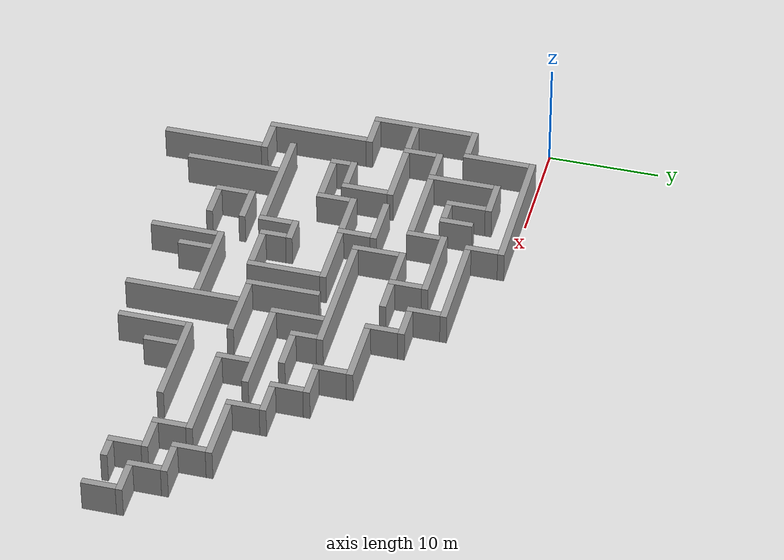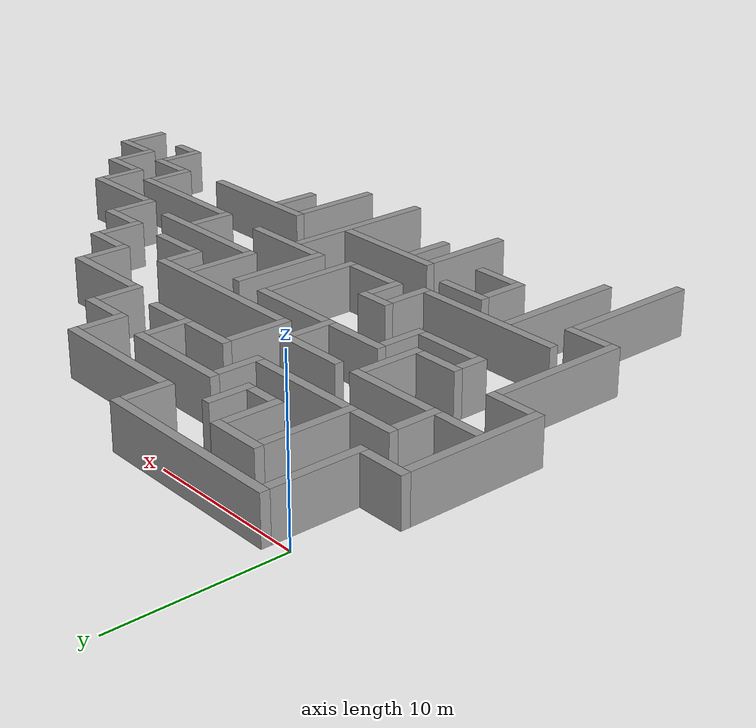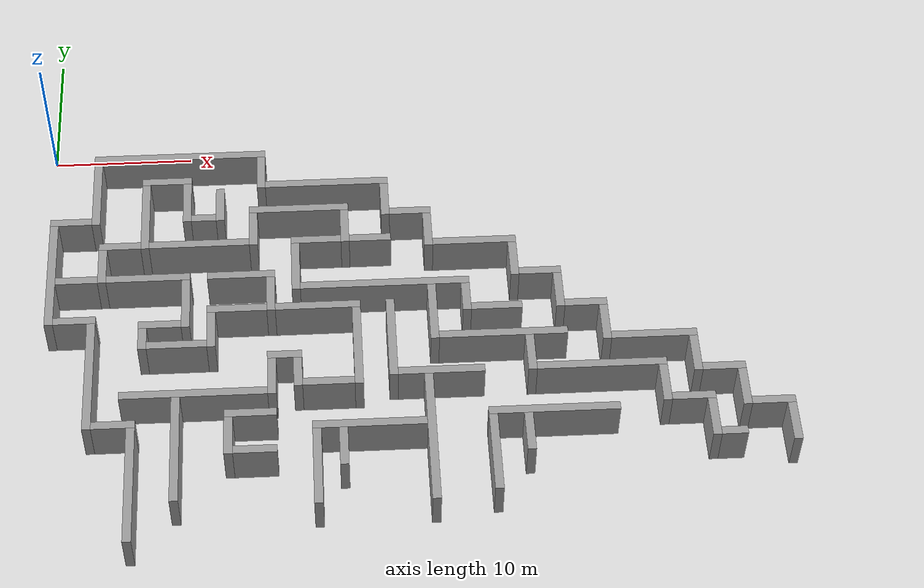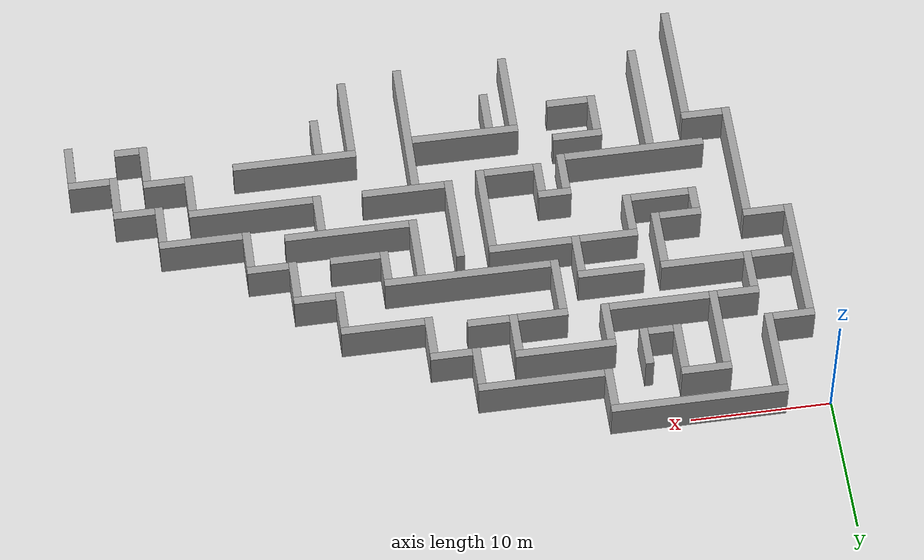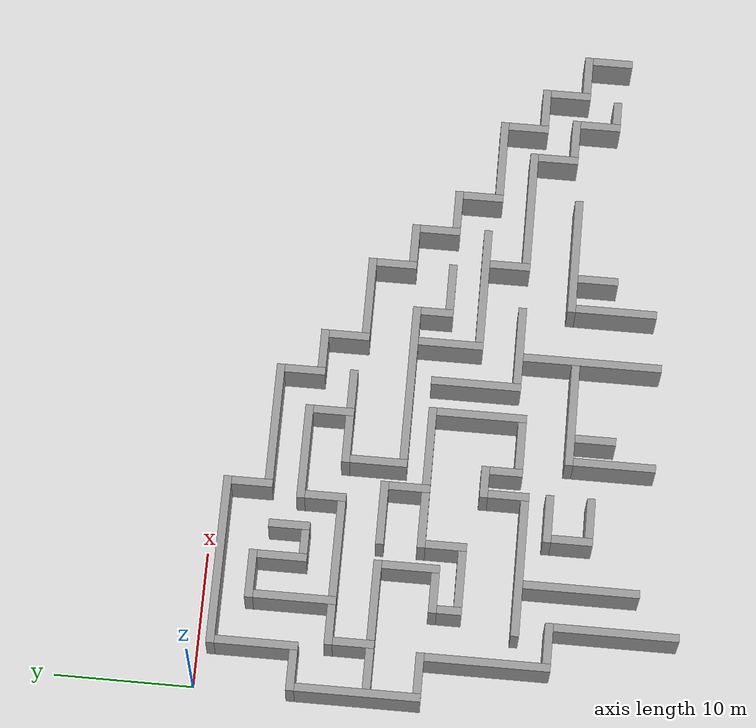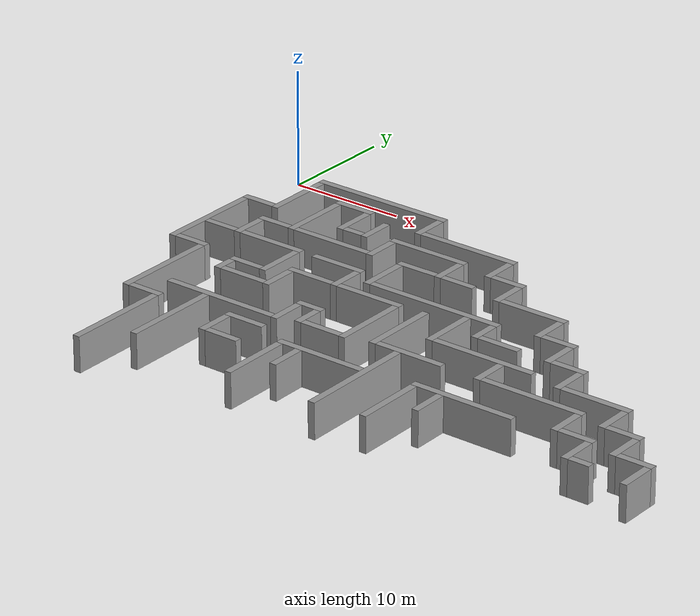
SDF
<sdf version="1.4">
 <model name="ButterflyWorld">
  <static>1</static>
  <link name="Wall_0">
   <collision name="Wall_0_Collision">
    <geometry><box><size>12.60000 0.60000 3.00000</size></box></geometry>
    <pose>9.30000 -0.90000 0 0 0 0.00000</pose>
   </collision>
   <visual name="Wall_0_Visual">
    <geometry><box><size>12.60000 0.60000 3.00000</size></box></geometry>
    <material>
     <script><uri>file://media/materials/scripts/gazebo.material</uri><name>Gazebo/Grey</name></script>
    </material>
    <pose>9.30000 -0.90000 0 0 0 0.00000</pose>
   </visual>
  </link>
  <link name="Wall_1">
   <collision name="Wall_1_Collision">
    <geometry><box><size>0.60000 6.00000 3.00000</size></box></geometry>
    <pose>3.30000 -4.20000 0 0 0 0.00000</pose>
   </collision>
   <visual name="Wall_1_Visual">
    <geometry><box><size>0.60000 6.00000 3.00000</size></box></geometry>
    <material>
     <script><uri>file://media/materials/scripts/gazebo.material</uri><name>Gazebo/Grey</name></script>
    </material>
    <pose>3.30000 -4.20000 0 0 0 0.00000</pose>
   </visual>
  </link>
  <link name="Wall_2">
   <collision name="Wall_2_Collision">
    <geometry><box><size>0.60000 3.00000 3.00000</size></box></geometry>
    <pose>15.30000 -2.70000 0 0 0 0.00000</pose>
   </collision>
   <visual name="Wall_2_Visual">
    <geometry><box><size>0.60000 3.00000 3.00000</size></box></geometry>
    <material>
     <script><uri>file://media/materials/scripts/gazebo.material</uri><name>Gazebo/Grey</name></script>
    </material>
    <pose>15.30000 -2.70000 0 0 0 0.00000</pose>
   </visual>
  </link>
  <link name="Wall_3">
   <collision name="Wall_3_Collision">
    <geometry><box><size>3.60000 0.60000 3.00000</size></box></geometry>
    <pose>8.40000 -3.30000 0 0 0 0.00000</pose>
   </collision>
   <visual name="Wall_3_Visual">
    <geometry><box><size>3.60000 0.60000 3.00000</size></box></geometry>
    <material>
     <script><uri>file://media/materials/scripts/gazebo.material</uri><name>Gazebo/Grey</name></script>
    </material>
    <pose>8.40000 -3.30000 0 0 0 0.00000</pose>
   </visual>
  </link>
  <link name="Wall_4">
   <collision name="Wall_4_Collision">
    <geometry><box><size>0.60000 6.00000 3.00000</size></box></geometry>
    <pose>6.90000 -6.60000 0 0 0 0.00000</pose>
   </collision>
   <visual name="Wall_4_Visual">
    <geometry><box><size>0.60000 6.00000 3.00000</size></box></geometry>
    <material>
     <script><uri>file://media/materials/scripts/gazebo.material</uri><name>Gazebo/Grey</name></script>
    </material>
    <pose>6.90000 -6.60000 0 0 0 0.00000</pose>
   </visual>
  </link>
  <link name="Wall_5">
   <collision name="Wall_5_Collision">
    <geometry><box><size>0.60000 3.60000 3.00000</size></box></geometry>
    <pose>9.90000 -5.40000 0 0 0 0.00000</pose>
   </collision>
   <visual name="Wall_5_Visual">
    <geometry><box><size>0.60000 3.60000 3.00000</size></box></geometry>
    <material>
     <script><uri>file://media/materials/scripts/gazebo.material</uri><name>Gazebo/Grey</name></script>
    </material>
    <pose>9.90000 -5.40000 0 0 0 0.00000</pose>
   </visual>
  </link>
  <link name="Wall_6">
   <collision name="Wall_6_Collision">
    <geometry><box><size>9.00000 0.60000 3.00000</size></box></geometry>
    <pose>20.10000 -3.90000 0 0 0 0.00000</pose>
   </collision>
   <visual name="Wall_6_Visual">
    <geometry><box><size>9.00000 0.60000 3.00000</size></box></geometry>
    <material>
     <script><uri>file://media/materials/scripts/gazebo.material</uri><name>Gazebo/Grey</name></script>
    </material>
    <pose>20.10000 -3.90000 0 0 0 0.00000</pose>
   </visual>
  </link>
  <link name="Wall_7">
   <collision name="Wall_7_Collision">
    <geometry><box><size>0.60000 3.00000 3.00000</size></box></geometry>
    <pose>12.30000 -5.70000 0 0 0 0.00000</pose>
   </collision>
   <visual name="Wall_7_Visual">
    <geometry><box><size>0.60000 3.00000 3.00000</size></box></geometry>
    <material>
     <script><uri>file://media/materials/scripts/gazebo.material</uri><name>Gazebo/Grey</name></script>
    </material>
    <pose>12.30000 -5.70000 0 0 0 0.00000</pose>
   </visual>
  </link>
  <link name="Wall_8">
   <collision name="Wall_8_Collision">
    <geometry><box><size>0.60000 3.00000 3.00000</size></box></geometry>
    <pose>24.30000 -5.70000 0 0 0 0.00000</pose>
   </collision>
   <visual name="Wall_8_Visual">
    <geometry><box><size>0.60000 3.00000 3.00000</size></box></geometry>
    <material>
     <script><uri>file://media/materials/scripts/gazebo.material</uri><name>Gazebo/Grey</name></script>
    </material>
    <pose>24.30000 -5.70000 0 0 0 0.00000</pose>
   </visual>
  </link>
  <link name="Wall_9">
   <collision name="Wall_9_Collision">
    <geometry><box><size>7.20000 0.60000 3.00000</size></box></geometry>
    <pose>18.00000 -6.30000 0 0 0 0.00000</pose>
   </collision>
   <visual name="Wall_9_Visual">
    <geometry><box><size>7.20000 0.60000 3.00000</size></box></geometry>
    <material>
     <script><uri>file://media/materials/scripts/gazebo.material</uri><name>Gazebo/Grey</name></script>
    </material>
    <pose>18.00000 -6.30000 0 0 0 0.00000</pose>
   </visual>
  </link>
  <link name="Wall_10">
   <collision name="Wall_10_Collision">
    <geometry><box><size>3.00000 0.60000 3.00000</size></box></geometry>
    <pose>1.50000 -6.90000 0 0 0 0.00000</pose>
   </collision>
   <visual name="Wall_10_Visual">
    <geometry><box><size>3.00000 0.60000 3.00000</size></box></geometry>
    <material>
     <script><uri>file://media/materials/scripts/gazebo.material</uri><name>Gazebo/Grey</name></script>
    </material>
    <pose>1.50000 -6.90000 0 0 0 0.00000</pose>
   </visual>
  </link>
  <link name="Wall_11">
   <collision name="Wall_11_Collision">
    <geometry><box><size>1.80000 0.60000 3.00000</size></box></geometry>
    <pose>11.10000 -6.90000 0 0 0 0.00000</pose>
   </collision>
   <visual name="Wall_11_Visual">
    <geometry><box><size>1.80000 0.60000 3.00000</size></box></geometry>
    <material>
     <script><uri>file://media/materials/scripts/gazebo.material</uri><name>Gazebo/Grey</name></script>
    </material>
    <pose>11.10000 -6.90000 0 0 0 0.00000</pose>
   </visual>
  </link>
  <link name="Wall_12">
   <collision name="Wall_12_Collision">
    <geometry><box><size>0.60000 3.00000 3.00000</size></box></geometry>
    <pose>14.70000 -8.10000 0 0 0 0.00000</pose>
   </collision>
   <visual name="Wall_12_Visual">
    <geometry><box><size>0.60000 3.00000 3.00000</size></box></geometry>
    <material>
     <script><uri>file://media/materials/scripts/gazebo.material</uri><name>Gazebo/Grey</name></script>
    </material>
    <pose>14.70000 -8.10000 0 0 0 0.00000</pose>
   </visual>
  </link>
  <link name="Wall_13">
   <collision name="Wall_13_Collision">
    <geometry><box><size>0.60000 3.00000 3.00000</size></box></geometry>
    <pose>21.30000 -8.10000 0 0 0 0.00000</pose>
   </collision>
   <visual name="Wall_13_Visual">
    <geometry><box><size>0.60000 3.00000 3.00000</size></box></geometry>
    <material>
     <script><uri>file://media/materials/scripts/gazebo.material</uri><name>Gazebo/Grey</name></script>
    </material>
    <pose>21.30000 -8.10000 0 0 0 0.00000</pose>
   </visual>
  </link>
  <link name="Wall_14">
   <collision name="Wall_14_Collision">
    <geometry><box><size>3.00000 0.60000 3.00000</size></box></geometry>
    <pose>26.10000 -6.90000 0 0 0 0.00000</pose>
   </collision>
   <visual name="Wall_14_Visual">
    <geometry><box><size>3.00000 0.60000 3.00000</size></box></geometry>
    <material>
     <script><uri>file://media/materials/scripts/gazebo.material</uri><name>Gazebo/Grey</name></script>
    </material>
    <pose>26.10000 -6.90000 0 0 0 0.00000</pose>
   </visual>
  </link>
  <link name="Wall_15">
   <collision name="Wall_15_Collision">
    <geometry><box><size>0.60000 9.00000 3.00000</size></box></geometry>
    <pose>0.30000 -11.70000 0 0 0 0.00000</pose>
   </collision>
   <visual name="Wall_15_Visual">
    <geometry><box><size>0.60000 9.00000 3.00000</size></box></geometry>
    <material>
     <script><uri>file://media/materials/scripts/gazebo.material</uri><name>Gazebo/Grey</name></script>
    </material>
    <pose>0.30000 -11.70000 0 0 0 0.00000</pose>
   </visual>
  </link>
  <link name="Wall_16">
   <collision name="Wall_16_Collision">
    <geometry><box><size>0.60000 3.00000 3.00000</size></box></geometry>
    <pose>27.30000 -8.70000 0 0 0 0.00000</pose>
   </collision>
   <visual name="Wall_16_Visual">
    <geometry><box><size>0.60000 3.00000 3.00000</size></box></geometry>
    <material>
     <script><uri>file://media/materials/scripts/gazebo.material</uri><name>Gazebo/Grey</name></script>
    </material>
    <pose>27.30000 -8.70000 0 0 0 0.00000</pose>
   </visual>
  </link>
  <link name="Wall_17">
   <collision name="Wall_17_Collision">
    <geometry><box><size>3.00000 0.60000 3.00000</size></box></geometry>
    <pose>5.10000 -9.30000 0 0 0 0.00000</pose>
   </collision>
   <visual name="Wall_17_Visual">
    <geometry><box><size>3.00000 0.60000 3.00000</size></box></geometry>
    <material>
     <script><uri>file://media/materials/scripts/gazebo.material</uri><name>Gazebo/Grey</name></script>
    </material>
    <pose>5.10000 -9.30000 0 0 0 0.00000</pose>
   </visual>
  </link>
  <link name="Wall_18">
   <collision name="Wall_18_Collision">
    <geometry><box><size>7.20000 0.60000 3.00000</size></box></geometry>
    <pose>10.80000 -9.30000 0 0 0 0.00000</pose>
   </collision>
   <visual name="Wall_18_Visual">
    <geometry><box><size>7.20000 0.60000 3.00000</size></box></geometry>
    <material>
     <script><uri>file://media/materials/scripts/gazebo.material</uri><name>Gazebo/Grey</name></script>
    </material>
    <pose>10.80000 -9.30000 0 0 0 0.00000</pose>
   </visual>
  </link>
  <link name="Wall_19">
   <collision name="Wall_19_Collision">
    <geometry><box><size>3.60000 0.60000 3.00000</size></box></geometry>
    <pose>19.20000 -9.30000 0 0 0 0.00000</pose>
   </collision>
   <visual name="Wall_19_Visual">
    <geometry><box><size>3.60000 0.60000 3.00000</size></box></geometry>
    <material>
     <script><uri>file://media/materials/scripts/gazebo.material</uri><name>Gazebo/Grey</name></script>
    </material>
    <pose>19.20000 -9.30000 0 0 0 0.00000</pose>
   </visual>
  </link>
  <link name="Wall_20">
   <collision name="Wall_20_Collision">
    <geometry><box><size>3.00000 0.60000 3.00000</size></box></geometry>
    <pose>23.10000 -9.30000 0 0 0 0.00000</pose>
   </collision>
   <visual name="Wall_20_Visual">
    <geometry><box><size>3.00000 0.60000 3.00000</size></box></geometry>
    <material>
     <script><uri>file://media/materials/scripts/gazebo.material</uri><name>Gazebo/Grey</name></script>
    </material>
    <pose>23.10000 -9.30000 0 0 0 0.00000</pose>
   </visual>
  </link>
  <link name="Wall_21">
   <collision name="Wall_21_Collision">
    <geometry><box><size>0.60000 3.00000 3.00000</size></box></geometry>
    <pose>3.90000 -11.10000 0 0 0 0.00000</pose>
   </collision>
   <visual name="Wall_21_Visual">
    <geometry><box><size>0.60000 3.00000 3.00000</size></box></geometry>
    <material>
     <script><uri>file://media/materials/scripts/gazebo.material</uri><name>Gazebo/Grey</name></script>
    </material>
    <pose>3.90000 -11.10000 0 0 0 0.00000</pose>
   </visual>
  </link>
  <link name="Wall_22">
   <collision name="Wall_22_Collision">
    <geometry><box><size>0.60000 4.20000 3.00000</size></box></geometry>
    <pose>17.70000 -11.70000 0 0 0 0.00000</pose>
   </collision>
   <visual name="Wall_22_Visual">
    <geometry><box><size>0.60000 4.20000 3.00000</size></box></geometry>
    <material>
     <script><uri>file://media/materials/scripts/gazebo.material</uri><name>Gazebo/Grey</name></script>
    </material>
    <pose>17.70000 -11.70000 0 0 0 0.00000</pose>
   </visual>
  </link>
  <link name="Wall_23">
   <collision name="Wall_23_Collision">
    <geometry><box><size>6.00000 0.60000 3.00000</size></box></geometry>
    <pose>30.60000 -9.90000 0 0 0 0.00000</pose>
   </collision>
   <visual name="Wall_23_Visual">
    <geometry><box><size>6.00000 0.60000 3.00000</size></box></geometry>
    <material>
     <script><uri>file://media/materials/scripts/gazebo.material</uri><name>Gazebo/Grey</name></script>
    </material>
    <pose>30.60000 -9.90000 0 0 0 0.00000</pose>
   </visual>
  </link>
  <link name="Wall_24">
   <collision name="Wall_24_Collision">
    <geometry><box><size>0.60000 3.00000 3.00000</size></box></geometry>
    <pose>33.30000 -11.70000 0 0 0 0.00000</pose>
   </collision>
   <visual name="Wall_24_Visual">
    <geometry><box><size>0.60000 3.00000 3.00000</size></box></geometry>
    <material>
     <script><uri>file://media/materials/scripts/gazebo.material</uri><name>Gazebo/Grey</name></script>
    </material>
    <pose>33.30000 -11.70000 0 0 0 0.00000</pose>
   </visual>
  </link>
  <link name="Wall_25">
   <collision name="Wall_25_Collision">
    <geometry><box><size>3.00000 0.60000 3.00000</size></box></geometry>
    <pose>2.10000 -12.30000 0 0 0 0.00000</pose>
   </collision>
   <visual name="Wall_25_Visual">
    <geometry><box><size>3.00000 0.60000 3.00000</size></box></geometry>
    <material>
     <script><uri>file://media/materials/scripts/gazebo.material</uri><name>Gazebo/Grey</name></script>
    </material>
    <pose>2.10000 -12.30000 0 0 0 0.00000</pose>
   </visual>
  </link>
  <link name="Wall_26">
   <collision name="Wall_26_Collision">
    <geometry><box><size>6.00000 0.60000 3.00000</size></box></geometry>
    <pose>7.20000 -12.30000 0 0 0 0.00000</pose>
   </collision>
   <visual name="Wall_26_Visual">
    <geometry><box><size>6.00000 0.60000 3.00000</size></box></geometry>
    <material>
     <script><uri>file://media/materials/scripts/gazebo.material</uri><name>Gazebo/Grey</name></script>
    </material>
    <pose>7.20000 -12.30000 0 0 0 0.00000</pose>
   </visual>
  </link>
  <link name="Wall_27">
   <collision name="Wall_27_Collision">
    <geometry><box><size>4.80000 0.60000 3.00000</size></box></geometry>
    <pose>13.80000 -12.30000 0 0 0 0.00000</pose>
   </collision>
   <visual name="Wall_27_Visual">
    <geometry><box><size>4.80000 0.60000 3.00000</size></box></geometry>
    <material>
     <script><uri>file://media/materials/scripts/gazebo.material</uri><name>Gazebo/Grey</name></script>
    </material>
    <pose>13.80000 -12.30000 0 0 0 0.00000</pose>
   </visual>
  </link>
  <link name="Wall_28">
   <collision name="Wall_28_Collision">
    <geometry><box><size>0.60000 4.20000 3.00000</size></box></geometry>
    <pose>9.90000 -14.70000 0 0 0 0.00000</pose>
   </collision>
   <visual name="Wall_28_Visual">
    <geometry><box><size>0.60000 4.20000 3.00000</size></box></geometry>
    <material>
     <script><uri>file://media/materials/scripts/gazebo.material</uri><name>Gazebo/Grey</name></script>
    </material>
    <pose>9.90000 -14.70000 0 0 0 0.00000</pose>
   </visual>
  </link>
  <link name="Wall_29">
   <collision name="Wall_29_Collision">
    <geometry><box><size>0.60000 3.00000 3.00000</size></box></geometry>
    <pose>15.90000 -14.10000 0 0 0 0.00000</pose>
   </collision>
   <visual name="Wall_29_Visual">
    <geometry><box><size>0.60000 3.00000 3.00000</size></box></geometry>
    <material>
     <script><uri>file://media/materials/scripts/gazebo.material</uri><name>Gazebo/Grey</name></script>
    </material>
    <pose>15.90000 -14.10000 0 0 0 0.00000</pose>
   </visual>
  </link>
  <link name="Wall_30">
   <collision name="Wall_30_Collision">
    <geometry><box><size>3.00000 0.60000 3.00000</size></box></geometry>
    <pose>35.10000 -12.90000 0 0 0 0.00000</pose>
   </collision>
   <visual name="Wall_30_Visual">
    <geometry><box><size>3.00000 0.60000 3.00000</size></box></geometry>
    <material>
     <script><uri>file://media/materials/scripts/gazebo.material</uri><name>Gazebo/Grey</name></script>
    </material>
    <pose>35.10000 -12.90000 0 0 0 0.00000</pose>
   </visual>
  </link>
  <link name="Wall_31">
   <collision name="Wall_31_Collision">
    <geometry><box><size>12.00000 0.60000 3.00000</size></box></geometry>
    <pose>24.00000 -13.50000 0 0 0 0.00000</pose>
   </collision>
   <visual name="Wall_31_Visual">
    <geometry><box><size>12.00000 0.60000 3.00000</size></box></geometry>
    <material>
     <script><uri>file://media/materials/scripts/gazebo.material</uri><name>Gazebo/Grey</name></script>
    </material>
    <pose>24.00000 -13.50000 0 0 0 0.00000</pose>
   </visual>
  </link>
  <link name="Wall_32">
   <collision name="Wall_32_Collision">
    <geometry><box><size>0.60000 3.00000 3.00000</size></box></geometry>
    <pose>36.30000 -14.70000 0 0 0 0.00000</pose>
   </collision>
   <visual name="Wall_32_Visual">
    <geometry><box><size>0.60000 3.00000 3.00000</size></box></geometry>
    <material>
     <script><uri>file://media/materials/scripts/gazebo.material</uri><name>Gazebo/Grey</name></script>
    </material>
    <pose>36.30000 -14.70000 0 0 0 0.00000</pose>
   </visual>
  </link>
  <link name="Wall_33">
   <collision name="Wall_33_Collision">
    <geometry><box><size>0.60000 4.80000 3.00000</size></box></geometry>
    <pose>27.30000 -16.20000 0 0 0 0.00000</pose>
   </collision>
   <visual name="Wall_33_Visual">
    <geometry><box><size>0.60000 4.80000 3.00000</size></box></geometry>
    <material>
     <script><uri>file://media/materials/scripts/gazebo.material</uri><name>Gazebo/Grey</name></script>
    </material>
    <pose>27.30000 -16.20000 0 0 0 0.00000</pose>
   </visual>
  </link>
  <link name="Wall_34">
   <collision name="Wall_34_Collision">
    <geometry><box><size>0.60000 2.40000 3.00000</size></box></geometry>
    <pose>29.70000 -15.00000 0 0 0 0.00000</pose>
   </collision>
   <visual name="Wall_34_Visual">
    <geometry><box><size>0.60000 2.40000 3.00000</size></box></geometry>
    <material>
     <script><uri>file://media/materials/scripts/gazebo.material</uri><name>Gazebo/Grey</name></script>
    </material>
    <pose>29.70000 -15.00000 0 0 0 0.00000</pose>
   </visual>
  </link>
  <link name="Wall_35">
   <collision name="Wall_35_Collision">
    <geometry><box><size>4.20000 0.60000 3.00000</size></box></geometry>
    <pose>13.50000 -15.30000 0 0 0 0.00000</pose>
   </collision>
   <visual name="Wall_35_Visual">
    <geometry><box><size>4.20000 0.60000 3.00000</size></box></geometry>
    <material>
     <script><uri>file://media/materials/scripts/gazebo.material</uri><name>Gazebo/Grey</name></script>
    </material>
    <pose>13.50000 -15.30000 0 0 0 0.00000</pose>
   </visual>
  </link>
  <link name="Wall_36">
   <collision name="Wall_36_Collision">
    <geometry><box><size>6.00000 0.60000 3.00000</size></box></geometry>
    <pose>19.20000 -15.30000 0 0 0 0.00000</pose>
   </collision>
   <visual name="Wall_36_Visual">
    <geometry><box><size>6.00000 0.60000 3.00000</size></box></geometry>
    <material>
     <script><uri>file://media/materials/scripts/gazebo.material</uri><name>Gazebo/Grey</name></script>
    </material>
    <pose>19.20000 -15.30000 0 0 0 0.00000</pose>
   </visual>
  </link>
  <link name="Wall_37">
   <collision name="Wall_37_Collision">
    <geometry><box><size>0.60000 6.60000 3.00000</size></box></geometry>
    <pose>24.30000 -18.30000 0 0 0 0.00000</pose>
   </collision>
   <visual name="Wall_37_Visual">
    <geometry><box><size>0.60000 6.60000 3.00000</size></box></geometry>
    <material>
     <script><uri>file://media/materials/scripts/gazebo.material</uri><name>Gazebo/Grey</name></script>
    </material>
    <pose>24.30000 -18.30000 0 0 0 0.00000</pose>
   </visual>
  </link>
  <link name="Wall_38">
   <collision name="Wall_38_Collision">
    <geometry><box><size>3.00000 0.60000 3.00000</size></box></geometry>
    <pose>2.10000 -15.90000 0 0 0 0.00000</pose>
   </collision>
   <visual name="Wall_38_Visual">
    <geometry><box><size>3.00000 0.60000 3.00000</size></box></geometry>
    <material>
     <script><uri>file://media/materials/scripts/gazebo.material</uri><name>Gazebo/Grey</name></script>
    </material>
    <pose>2.10000 -15.90000 0 0 0 0.00000</pose>
   </visual>
  </link>
  <link name="Wall_39">
   <collision name="Wall_39_Collision">
    <geometry><box><size>0.60000 3.00000 3.00000</size></box></geometry>
    <pose>11.70000 -17.10000 0 0 0 0.00000</pose>
   </collision>
   <visual name="Wall_39_Visual">
    <geometry><box><size>0.60000 3.00000 3.00000</size></box></geometry>
    <material>
     <script><uri>file://media/materials/scripts/gazebo.material</uri><name>Gazebo/Grey</name></script>
    </material>
    <pose>11.70000 -17.10000 0 0 0 0.00000</pose>
   </visual>
  </link>
  <link name="Wall_40">
   <collision name="Wall_40_Collision">
    <geometry><box><size>0.60000 6.60000 3.00000</size></box></geometry>
    <pose>21.90000 -18.90000 0 0 0 0.00000</pose>
   </collision>
   <visual name="Wall_40_Visual">
    <geometry><box><size>0.60000 6.60000 3.00000</size></box></geometry>
    <material>
     <script><uri>file://media/materials/scripts/gazebo.material</uri><name>Gazebo/Grey</name></script>
    </material>
    <pose>21.90000 -18.90000 0 0 0 0.00000</pose>
   </visual>
  </link>
  <link name="Wall_41">
   <collision name="Wall_41_Collision">
    <geometry><box><size>3.60000 0.60000 3.00000</size></box></geometry>
    <pose>31.80000 -15.90000 0 0 0 0.00000</pose>
   </collision>
   <visual name="Wall_41_Visual">
    <geometry><box><size>3.60000 0.60000 3.00000</size></box></geometry>
    <material>
     <script><uri>file://media/materials/scripts/gazebo.material</uri><name>Gazebo/Grey</name></script>
    </material>
    <pose>31.80000 -15.90000 0 0 0 0.00000</pose>
   </visual>
  </link>
  <link name="Wall_42">
   <collision name="Wall_42_Collision">
    <geometry><box><size>3.00000 0.60000 3.00000</size></box></geometry>
    <pose>38.10000 -15.90000 0 0 0 0.00000</pose>
   </collision>
   <visual name="Wall_42_Visual">
    <geometry><box><size>3.00000 0.60000 3.00000</size></box></geometry>
    <material>
     <script><uri>file://media/materials/scripts/gazebo.material</uri><name>Gazebo/Grey</name></script>
    </material>
    <pose>38.10000 -15.90000 0 0 0 0.00000</pose>
   </visual>
  </link>
  <link name="Wall_43">
   <collision name="Wall_43_Collision">
    <geometry><box><size>0.60000 9.00000 3.00000</size></box></geometry>
    <pose>3.30000 -20.70000 0 0 0 0.00000</pose>
   </collision>
   <visual name="Wall_43_Visual">
    <geometry><box><size>0.60000 9.00000 3.00000</size></box></geometry>
    <material>
     <script><uri>file://media/materials/scripts/gazebo.material</uri><name>Gazebo/Grey</name></script>
    </material>
    <pose>3.30000 -20.70000 0 0 0 0.00000</pose>
   </visual>
  </link>
  <link name="Wall_44">
   <collision name="Wall_44_Collision">
    <geometry><box><size>3.00000 0.60000 3.00000</size></box></geometry>
    <pose>8.10000 -16.50000 0 0 0 0.00000</pose>
   </collision>
   <visual name="Wall_44_Visual">
    <geometry><box><size>3.00000 0.60000 3.00000</size></box></geometry>
    <material>
     <script><uri>file://media/materials/scripts/gazebo.material</uri><name>Gazebo/Grey</name></script>
    </material>
    <pose>8.10000 -16.50000 0 0 0 0.00000</pose>
   </visual>
  </link>
  <link name="Wall_45">
   <collision name="Wall_45_Collision">
    <geometry><box><size>0.60000 3.00000 3.00000</size></box></geometry>
    <pose>39.30000 -17.70000 0 0 0 0.00000</pose>
   </collision>
   <visual name="Wall_45_Visual">
    <geometry><box><size>0.60000 3.00000 3.00000</size></box></geometry>
    <material>
     <script><uri>file://media/materials/scripts/gazebo.material</uri><name>Gazebo/Grey</name></script>
    </material>
    <pose>39.30000 -17.70000 0 0 0 0.00000</pose>
   </visual>
  </link>
  <link name="Wall_46">
   <collision name="Wall_46_Collision">
    <geometry><box><size>0.60000 1.80000 3.00000</size></box></geometry>
    <pose>6.90000 -17.70000 0 0 0 0.00000</pose>
   </collision>
   <visual name="Wall_46_Visual">
    <geometry><box><size>0.60000 1.80000 3.00000</size></box></geometry>
    <material>
     <script><uri>file://media/materials/scripts/gazebo.material</uri><name>Gazebo/Grey</name></script>
    </material>
    <pose>6.90000 -17.70000 0 0 0 0.00000</pose>
   </visual>
  </link>
  <link name="Wall_47">
   <collision name="Wall_47_Collision">
    <geometry><box><size>4.20000 0.60000 3.00000</size></box></geometry>
    <pose>9.30000 -18.30000 0 0 0 0.00000</pose>
   </collision>
   <visual name="Wall_47_Visual">
    <geometry><box><size>4.20000 0.60000 3.00000</size></box></geometry>
    <material>
     <script><uri>file://media/materials/scripts/gazebo.material</uri><name>Gazebo/Grey</name></script>
    </material>
    <pose>9.30000 -18.30000 0 0 0 0.00000</pose>
   </visual>
  </link>
  <link name="Wall_48">
   <collision name="Wall_48_Collision">
    <geometry><box><size>9.00000 0.60000 3.00000</size></box></geometry>
    <pose>32.10000 -18.30000 0 0 0 0.00000</pose>
   </collision>
   <visual name="Wall_48_Visual">
    <geometry><box><size>9.00000 0.60000 3.00000</size></box></geometry>
    <material>
     <script><uri>file://media/materials/scripts/gazebo.material</uri><name>Gazebo/Grey</name></script>
    </material>
    <pose>32.10000 -18.30000 0 0 0 0.00000</pose>
   </visual>
  </link>
  <link name="Wall_49">
   <collision name="Wall_49_Collision">
    <geometry><box><size>0.60000 3.00000 3.00000</size></box></geometry>
    <pose>33.90000 -20.10000 0 0 0 0.00000</pose>
   </collision>
   <visual name="Wall_49_Visual">
    <geometry><box><size>0.60000 3.00000 3.00000</size></box></geometry>
    <material>
     <script><uri>file://media/materials/scripts/gazebo.material</uri><name>Gazebo/Grey</name></script>
    </material>
    <pose>33.90000 -20.10000 0 0 0 0.00000</pose>
   </visual>
  </link>
  <link name="Wall_50">
   <collision name="Wall_50_Collision">
    <geometry><box><size>6.00000 0.60000 3.00000</size></box></geometry>
    <pose>42.60000 -18.90000 0 0 0 0.00000</pose>
   </collision>
   <visual name="Wall_50_Visual">
    <geometry><box><size>6.00000 0.60000 3.00000</size></box></geometry>
    <material>
     <script><uri>file://media/materials/scripts/gazebo.material</uri><name>Gazebo/Grey</name></script>
    </material>
    <pose>42.60000 -18.90000 0 0 0 0.00000</pose>
   </visual>
  </link>
  <link name="Wall_51">
   <collision name="Wall_51_Collision">
    <geometry><box><size>2.40000 0.60000 3.00000</size></box></geometry>
    <pose>16.80000 -19.50000 0 0 0 0.00000</pose>
   </collision>
   <visual name="Wall_51_Visual">
    <geometry><box><size>2.40000 0.60000 3.00000</size></box></geometry>
    <material>
     <script><uri>file://media/materials/scripts/gazebo.material</uri><name>Gazebo/Grey</name></script>
    </material>
    <pose>16.80000 -19.50000 0 0 0 0.00000</pose>
   </visual>
  </link>
  <link name="Wall_52">
   <collision name="Wall_52_Collision">
    <geometry><box><size>0.60000 3.00000 3.00000</size></box></geometry>
    <pose>45.30000 -20.70000 0 0 0 0.00000</pose>
   </collision>
   <visual name="Wall_52_Visual">
    <geometry><box><size>0.60000 3.00000 3.00000</size></box></geometry>
    <material>
     <script><uri>file://media/materials/scripts/gazebo.material</uri><name>Gazebo/Grey</name></script>
    </material>
    <pose>45.30000 -20.70000 0 0 0 0.00000</pose>
   </visual>
  </link>
  <link name="Wall_53">
   <collision name="Wall_53_Collision">
    <geometry><box><size>0.60000 3.00000 3.00000</size></box></geometry>
    <pose>15.90000 -21.30000 0 0 0 0.00000</pose>
   </collision>
   <visual name="Wall_53_Visual">
    <geometry><box><size>0.60000 3.00000 3.00000</size></box></geometry>
    <material>
     <script><uri>file://media/materials/scripts/gazebo.material</uri><name>Gazebo/Grey</name></script>
    </material>
    <pose>15.90000 -21.30000 0 0 0 0.00000</pose>
   </visual>
  </link>
  <link name="Wall_54">
   <collision name="Wall_54_Collision">
    <geometry><box><size>0.60000 2.40000 3.00000</size></box></geometry>
    <pose>17.70000 -21.00000 0 0 0 0.00000</pose>
   </collision>
   <visual name="Wall_54_Visual">
    <geometry><box><size>0.60000 2.40000 3.00000</size></box></geometry>
    <material>
     <script><uri>file://media/materials/scripts/gazebo.material</uri><name>Gazebo/Grey</name></script>
    </material>
    <pose>17.70000 -21.00000 0 0 0 0.00000</pose>
   </visual>
  </link>
  <link name="Wall_55">
   <collision name="Wall_55_Collision">
    <geometry><box><size>6.00000 0.60000 3.00000</size></box></geometry>
    <pose>27.60000 -21.30000 0 0 0 0.00000</pose>
   </collision>
   <visual name="Wall_55_Visual">
    <geometry><box><size>6.00000 0.60000 3.00000</size></box></geometry>
    <material>
     <script><uri>file://media/materials/scripts/gazebo.material</uri><name>Gazebo/Grey</name></script>
    </material>
    <pose>27.60000 -21.30000 0 0 0 0.00000</pose>
   </visual>
  </link>
  <link name="Wall_56">
   <collision name="Wall_56_Collision">
    <geometry><box><size>9.00000 0.60000 3.00000</size></box></geometry>
    <pose>38.70000 -21.30000 0 0 0 0.00000</pose>
   </collision>
   <visual name="Wall_56_Visual">
    <geometry><box><size>9.00000 0.60000 3.00000</size></box></geometry>
    <material>
     <script><uri>file://media/materials/scripts/gazebo.material</uri><name>Gazebo/Grey</name></script>
    </material>
    <pose>38.70000 -21.30000 0 0 0 0.00000</pose>
   </visual>
  </link>
  <link name="Wall_57">
   <collision name="Wall_57_Collision">
    <geometry><box><size>3.60000 0.60000 3.00000</size></box></geometry>
    <pose>19.80000 -21.90000 0 0 0 0.00000</pose>
   </collision>
   <visual name="Wall_57_Visual">
    <geometry><box><size>3.60000 0.60000 3.00000</size></box></geometry>
    <material>
     <script><uri>file://media/materials/scripts/gazebo.material</uri><name>Gazebo/Grey</name></script>
    </material>
    <pose>19.80000 -21.90000 0 0 0 0.00000</pose>
   </visual>
  </link>
  <link name="Wall_58">
   <collision name="Wall_58_Collision">
    <geometry><box><size>0.60000 10.20000 3.00000</size></box></geometry>
    <pose>26.70000 -26.70000 0 0 0 0.00000</pose>
   </collision>
   <visual name="Wall_58_Visual">
    <geometry><box><size>0.60000 10.20000 3.00000</size></box></geometry>
    <material>
     <script><uri>file://media/materials/scripts/gazebo.material</uri><name>Gazebo/Grey</name></script>
    </material>
    <pose>26.70000 -26.70000 0 0 0 0.00000</pose>
   </visual>
  </link>
  <link name="Wall_59">
   <collision name="Wall_59_Collision">
    <geometry><box><size>0.60000 3.00000 3.00000</size></box></geometry>
    <pose>42.90000 -23.10000 0 0 0 0.00000</pose>
   </collision>
   <visual name="Wall_59_Visual">
    <geometry><box><size>0.60000 3.00000 3.00000</size></box></geometry>
    <material>
     <script><uri>file://media/materials/scripts/gazebo.material</uri><name>Gazebo/Grey</name></script>
    </material>
    <pose>42.90000 -23.10000 0 0 0 0.00000</pose>
   </visual>
  </link>
  <link name="Wall_60">
   <collision name="Wall_60_Collision">
    <geometry><box><size>3.00000 0.60000 3.00000</size></box></geometry>
    <pose>47.10000 -21.90000 0 0 0 0.00000</pose>
   </collision>
   <visual name="Wall_60_Visual">
    <geometry><box><size>3.00000 0.60000 3.00000</size></box></geometry>
    <material>
     <script><uri>file://media/materials/scripts/gazebo.material</uri><name>Gazebo/Grey</name></script>
    </material>
    <pose>47.10000 -21.90000 0 0 0 0.00000</pose>
   </visual>
  </link>
  <link name="Wall_61">
   <collision name="Wall_61_Collision">
    <geometry><box><size>10.20000 0.60000 3.00000</size></box></geometry>
    <pose>10.50000 -22.50000 0 0 0 0.00000</pose>
   </collision>
   <visual name="Wall_61_Visual">
    <geometry><box><size>10.20000 0.60000 3.00000</size></box></geometry>
    <material>
     <script><uri>file://media/materials/scripts/gazebo.material</uri><name>Gazebo/Grey</name></script>
    </material>
    <pose>10.50000 -22.50000 0 0 0 0.00000</pose>
   </visual>
  </link>
  <link name="Wall_62">
   <collision name="Wall_62_Collision">
    <geometry><box><size>0.60000 3.00000 3.00000</size></box></geometry>
    <pose>48.30000 -23.70000 0 0 0 0.00000</pose>
   </collision>
   <visual name="Wall_62_Visual">
    <geometry><box><size>0.60000 3.00000 3.00000</size></box></geometry>
    <material>
     <script><uri>file://media/materials/scripts/gazebo.material</uri><name>Gazebo/Grey</name></script>
    </material>
    <pose>48.30000 -23.70000 0 0 0 0.00000</pose>
   </visual>
  </link>
  <link name="Wall_63">
   <collision name="Wall_63_Collision">
    <geometry><box><size>0.60000 8.40000 3.00000</size></box></geometry>
    <pose>9.30000 -27.00000 0 0 0 0.00000</pose>
   </collision>
   <visual name="Wall_63_Visual">
    <geometry><box><size>0.60000 8.40000 3.00000</size></box></geometry>
    <material>
     <script><uri>file://media/materials/scripts/gazebo.material</uri><name>Gazebo/Grey</name></script>
    </material>
    <pose>9.30000 -27.00000 0 0 0 0.00000</pose>
   </visual>
  </link>
  <link name="Wall_64">
   <collision name="Wall_64_Collision">
    <geometry><box><size>3.60000 0.60000 3.00000</size></box></geometry>
    <pose>14.40000 -24.30000 0 0 0 0.00000</pose>
   </collision>
   <visual name="Wall_64_Visual">
    <geometry><box><size>3.60000 0.60000 3.00000</size></box></geometry>
    <material>
     <script><uri>file://media/materials/scripts/gazebo.material</uri><name>Gazebo/Grey</name></script>
    </material>
    <pose>14.40000 -24.30000 0 0 0 0.00000</pose>
   </visual>
  </link>
  <link name="Wall_65">
   <collision name="Wall_65_Collision">
    <geometry><box><size>3.00000 0.60000 3.00000</size></box></geometry>
    <pose>44.70000 -24.30000 0 0 0 0.00000</pose>
   </collision>
   <visual name="Wall_65_Visual">
    <geometry><box><size>3.00000 0.60000 3.00000</size></box></geometry>
    <material>
     <script><uri>file://media/materials/scripts/gazebo.material</uri><name>Gazebo/Grey</name></script>
    </material>
    <pose>44.70000 -24.30000 0 0 0 0.00000</pose>
   </visual>
  </link>
  <link name="Wall_66">
   <collision name="Wall_66_Collision">
    <geometry><box><size>3.00000 0.60000 3.00000</size></box></geometry>
    <pose>5.10000 -24.90000 0 0 0 0.00000</pose>
   </collision>
   <visual name="Wall_66_Visual">
    <geometry><box><size>3.00000 0.60000 3.00000</size></box></geometry>
    <material>
     <script><uri>file://media/materials/scripts/gazebo.material</uri><name>Gazebo/Grey</name></script>
    </material>
    <pose>5.10000 -24.90000 0 0 0 0.00000</pose>
   </visual>
  </link>
  <link name="Wall_67">
   <collision name="Wall_67_Collision">
    <geometry><box><size>0.60000 3.00000 3.00000</size></box></geometry>
    <pose>12.90000 -26.10000 0 0 0 0.00000</pose>
   </collision>
   <visual name="Wall_67_Visual">
    <geometry><box><size>0.60000 3.00000 3.00000</size></box></geometry>
    <material>
     <script><uri>file://media/materials/scripts/gazebo.material</uri><name>Gazebo/Grey</name></script>
    </material>
    <pose>12.90000 -26.10000 0 0 0 0.00000</pose>
   </visual>
  </link>
  <link name="Wall_68">
   <collision name="Wall_68_Collision">
    <geometry><box><size>9.00000 0.60000 3.00000</size></box></geometry>
    <pose>35.10000 -24.90000 0 0 0 0.00000</pose>
   </collision>
   <visual name="Wall_68_Visual">
    <geometry><box><size>9.00000 0.60000 3.00000</size></box></geometry>
    <material>
     <script><uri>file://media/materials/scripts/gazebo.material</uri><name>Gazebo/Grey</name></script>
    </material>
    <pose>35.10000 -24.90000 0 0 0 0.00000</pose>
   </visual>
  </link>
  <link name="Wall_69">
   <collision name="Wall_69_Collision">
    <geometry><box><size>0.60000 3.00000 3.00000</size></box></geometry>
    <pose>45.90000 -26.10000 0 0 0 0.00000</pose>
   </collision>
   <visual name="Wall_69_Visual">
    <geometry><box><size>0.60000 3.00000 3.00000</size></box></geometry>
    <material>
     <script><uri>file://media/materials/scripts/gazebo.material</uri><name>Gazebo/Grey</name></script>
    </material>
    <pose>45.90000 -26.10000 0 0 0 0.00000</pose>
   </visual>
  </link>
  <link name="Wall_70">
   <collision name="Wall_70_Collision">
    <geometry><box><size>3.00000 0.60000 3.00000</size></box></geometry>
    <pose>50.10000 -24.90000 0 0 0 0.00000</pose>
   </collision>
   <visual name="Wall_70_Visual">
    <geometry><box><size>3.00000 0.60000 3.00000</size></box></geometry>
    <material>
     <script><uri>file://media/materials/scripts/gazebo.material</uri><name>Gazebo/Grey</name></script>
    </material>
    <pose>50.10000 -24.90000 0 0 0 0.00000</pose>
   </visual>
  </link>
  <link name="Wall_71">
   <collision name="Wall_71_Collision">
    <geometry><box><size>0.60000 9.00000 3.00000</size></box></geometry>
    <pose>6.30000 -29.70000 0 0 0 0.00000</pose>
   </collision>
   <visual name="Wall_71_Visual">
    <geometry><box><size>0.60000 9.00000 3.00000</size></box></geometry>
    <material>
     <script><uri>file://media/materials/scripts/gazebo.material</uri><name>Gazebo/Grey</name></script>
    </material>
    <pose>6.30000 -29.70000 0 0 0 0.00000</pose>
   </visual>
  </link>
  <link name="Wall_72">
   <collision name="Wall_72_Collision">
    <geometry><box><size>7.80000 0.60000 3.00000</size></box></geometry>
    <pose>22.50000 -25.50000 0 0 0 0.00000</pose>
   </collision>
   <visual name="Wall_72_Visual">
    <geometry><box><size>7.80000 0.60000 3.00000</size></box></geometry>
    <material>
     <script><uri>file://media/materials/scripts/gazebo.material</uri><name>Gazebo/Grey</name></script>
    </material>
    <pose>22.50000 -25.50000 0 0 0 0.00000</pose>
   </visual>
  </link>
  <link name="Wall_73">
   <collision name="Wall_73_Collision">
    <geometry><box><size>0.60000 6.00000 3.00000</size></box></geometry>
    <pose>30.90000 -28.20000 0 0 0 0.00000</pose>
   </collision>
   <visual name="Wall_73_Visual">
    <geometry><box><size>0.60000 6.00000 3.00000</size></box></geometry>
    <material>
     <script><uri>file://media/materials/scripts/gazebo.material</uri><name>Gazebo/Grey</name></script>
    </material>
    <pose>30.90000 -28.20000 0 0 0 0.00000</pose>
   </visual>
  </link>
  <link name="Wall_74">
   <collision name="Wall_74_Collision">
    <geometry><box><size>0.60000 3.00000 3.00000</size></box></geometry>
    <pose>33.30000 -26.70000 0 0 0 0.00000</pose>
   </collision>
   <visual name="Wall_74_Visual">
    <geometry><box><size>0.60000 3.00000 3.00000</size></box></geometry>
    <material>
     <script><uri>file://media/materials/scripts/gazebo.material</uri><name>Gazebo/Grey</name></script>
    </material>
    <pose>33.30000 -26.70000 0 0 0 0.00000</pose>
   </visual>
  </link>
  <link name="Wall_75">
   <collision name="Wall_75_Collision">
    <geometry><box><size>0.60000 3.00000 3.00000</size></box></geometry>
    <pose>51.30000 -26.70000 0 0 0 0.00000</pose>
   </collision>
   <visual name="Wall_75_Visual">
    <geometry><box><size>0.60000 3.00000 3.00000</size></box></geometry>
    <material>
     <script><uri>file://media/materials/scripts/gazebo.material</uri><name>Gazebo/Grey</name></script>
    </material>
    <pose>51.30000 -26.70000 0 0 0 0.00000</pose>
   </visual>
  </link>
  <link name="Wall_76">
   <collision name="Wall_76_Collision">
    <geometry><box><size>0.60000 6.00000 3.00000</size></box></geometry>
    <pose>18.90000 -28.80000 0 0 0 0.00000</pose>
   </collision>
   <visual name="Wall_76_Visual">
    <geometry><box><size>0.60000 6.00000 3.00000</size></box></geometry>
    <material>
     <script><uri>file://media/materials/scripts/gazebo.material</uri><name>Gazebo/Grey</name></script>
    </material>
    <pose>18.90000 -28.80000 0 0 0 0.00000</pose>
   </visual>
  </link>
  <link name="Wall_77">
   <collision name="Wall_77_Collision">
    <geometry><box><size>0.60000 3.00000 3.00000</size></box></geometry>
    <pose>20.70000 -27.30000 0 0 0 0.00000</pose>
   </collision>
   <visual name="Wall_77_Visual">
    <geometry><box><size>0.60000 3.00000 3.00000</size></box></geometry>
    <material>
     <script><uri>file://media/materials/scripts/gazebo.material</uri><name>Gazebo/Grey</name></script>
    </material>
    <pose>20.70000 -27.30000 0 0 0 0.00000</pose>
   </visual>
  </link>
  <link name="Wall_78">
   <collision name="Wall_78_Collision">
    <geometry><box><size>3.00000 0.60000 3.00000</size></box></geometry>
    <pose>14.70000 -27.30000 0 0 0 0.00000</pose>
   </collision>
   <visual name="Wall_78_Visual">
    <geometry><box><size>3.00000 0.60000 3.00000</size></box></geometry>
    <material>
     <script><uri>file://media/materials/scripts/gazebo.material</uri><name>Gazebo/Grey</name></script>
    </material>
    <pose>14.70000 -27.30000 0 0 0 0.00000</pose>
   </visual>
  </link>
  <link name="Wall_79">
   <collision name="Wall_79_Collision">
    <geometry><box><size>1.80000 0.60000 3.00000</size></box></geometry>
    <pose>47.10000 -27.30000 0 0 0 0.00000</pose>
   </collision>
   <visual name="Wall_79_Visual">
    <geometry><box><size>1.80000 0.60000 3.00000</size></box></geometry>
    <material>
     <script><uri>file://media/materials/scripts/gazebo.material</uri><name>Gazebo/Grey</name></script>
    </material>
    <pose>47.10000 -27.30000 0 0 0 0.00000</pose>
   </visual>
  </link>
 </model>
</sdf>
